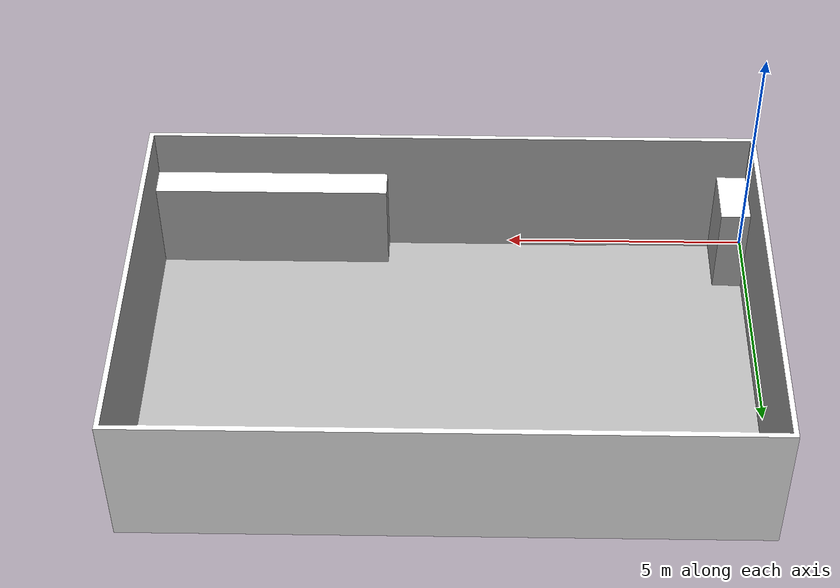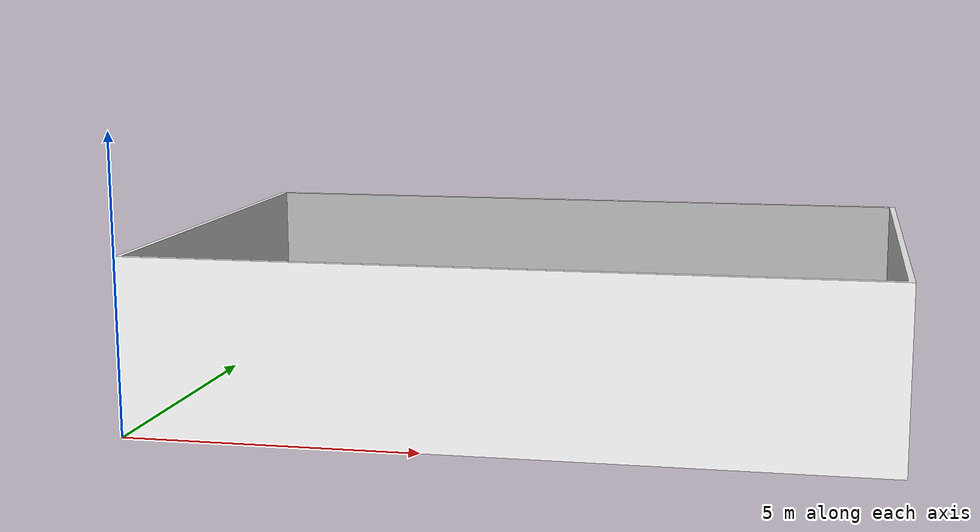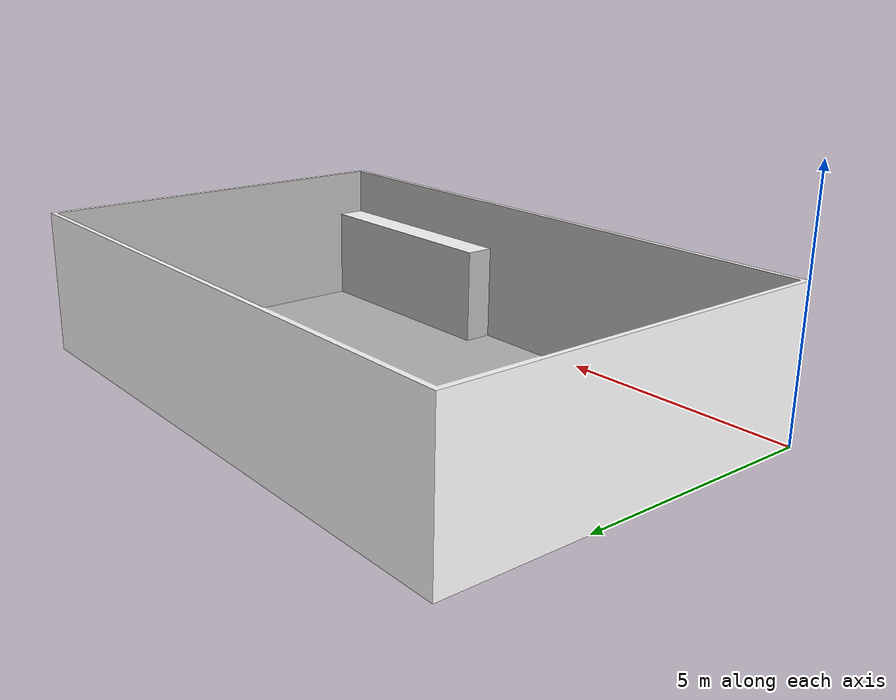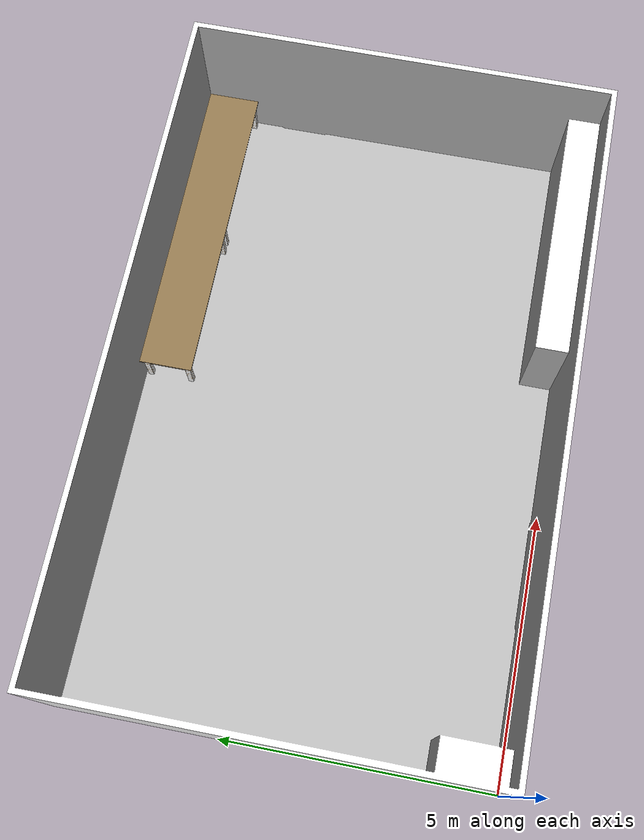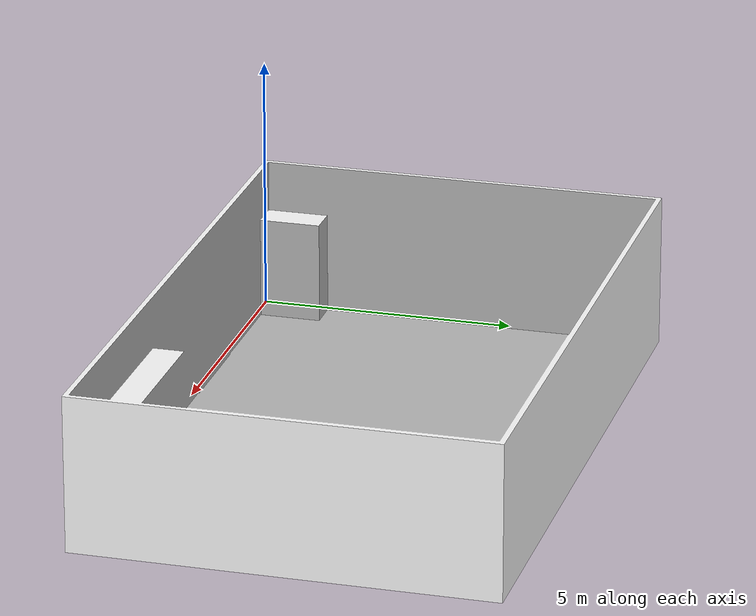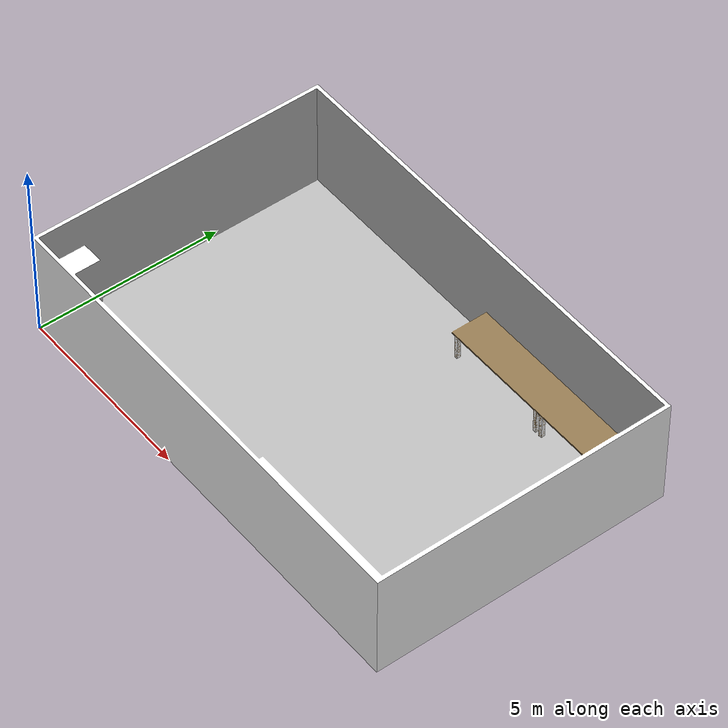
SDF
<?xml version='1.0'?>
<sdf version='1.6'>
  <model name='room_12_5x8'>
    <link name='link_0'>
      <visual name='visual'>
        <geometry>
          <mesh>
            <uri>model://room_12_5x8/12_5x8.dae</uri>
            <scale>1 1 1</scale>
          </mesh>
        </geometry>
        <cast_shadows>0</cast_shadows>
      </visual>
      <collision name='collision'>
        <geometry>
          <mesh>
            <uri>model://room_12_5x8/12_5x8.dae</uri>
          </mesh>
        </geometry>
      </collision>
    </link>
    <static>1</static>
  </model>
</sdf>
